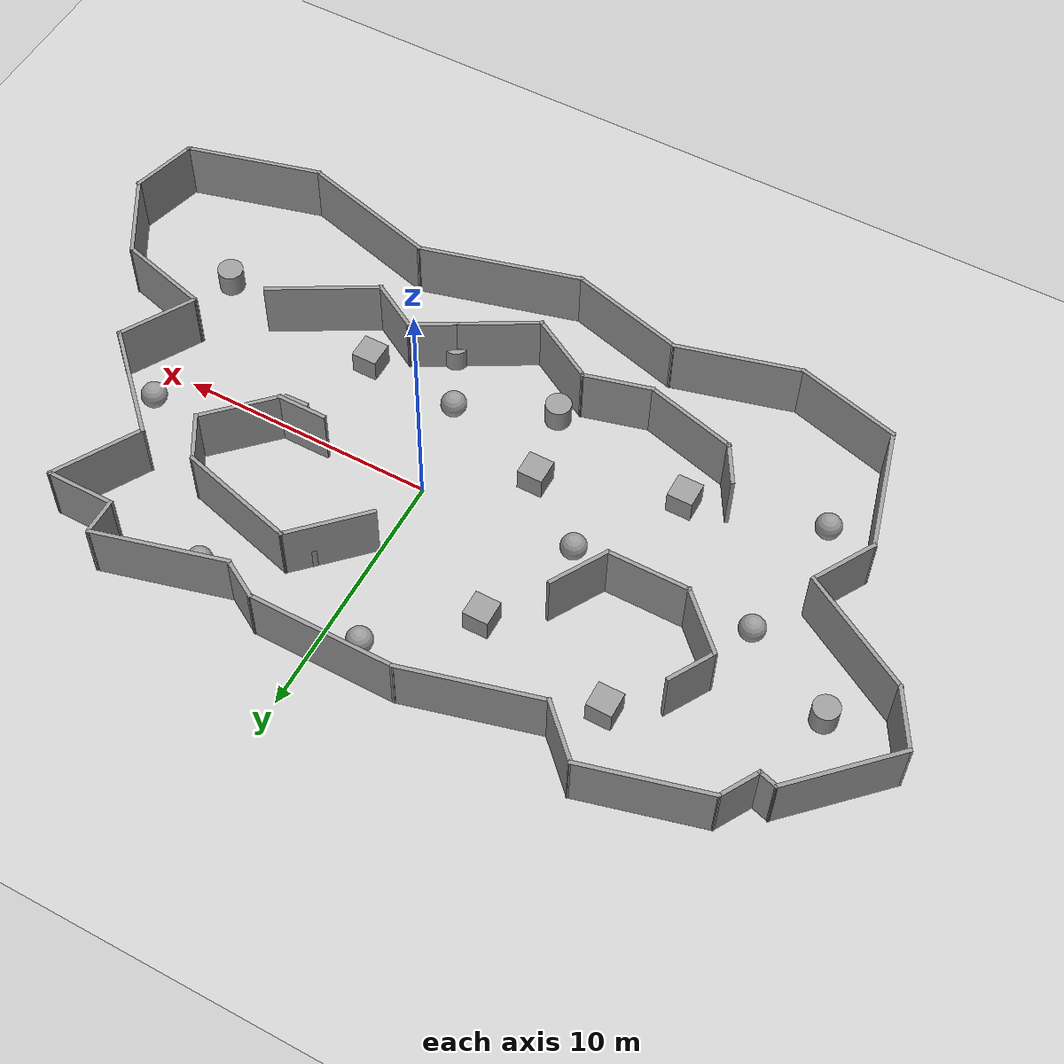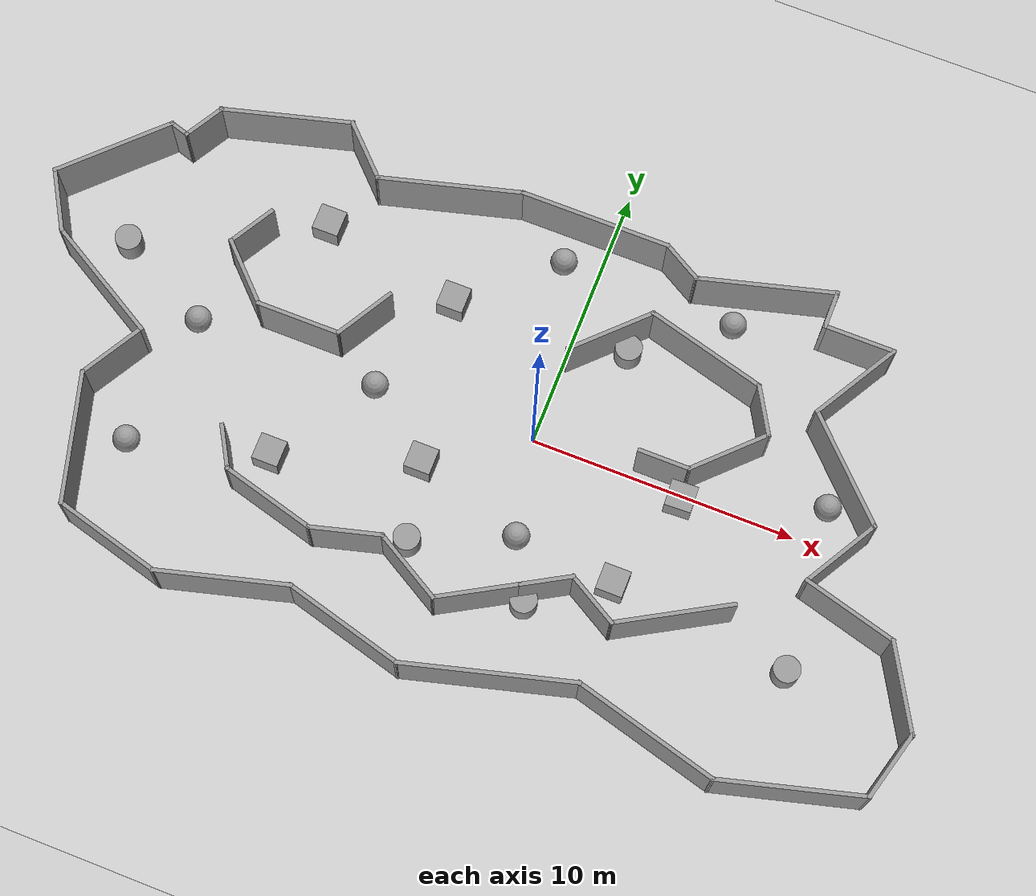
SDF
<sdf version="1.7">
 <world name="default">
  <light name="sun" type="directional">
   <pose>0 0 10 0 -0 0</pose>
   <diffuse>0.8 0.8 0.8 1</diffuse>
   <specular>0.2 0.2 0.2 1</specular>
   <attenuation>
    <range>1000</range>
    <constant>0.9</constant>
    <linear>0.01</linear>
    <quadratic>0.001</quadratic>
   </attenuation>
   <direction>-0.5 0.1 -0.9</direction>
   <spot><inner_angle>0</inner_angle><outer_angle>0</outer_angle><falloff>0</falloff></spot>
  </light>
  <model name="ground_plane">
   <static>1</static>
   <link name="link">
    <collision name="collision">
     <geometry><plane><normal>0 0 1</normal><size>100 100</size></plane></geometry>
     <surface>
      <contact><collide_bitmask>65535</collide_bitmask></contact>
      <friction><ode><mu>100</mu><mu2>50</mu2></ode></friction>
     </surface>
    </collision>
    <visual name="visual">
     <cast_shadows>0</cast_shadows>
     <geometry><plane><normal>0 0 1</normal><size>100 100</size></plane></geometry>
     <material>
      <script><uri>file://media/materials/scripts/gazebo.material</uri><name>Gazebo/Grey</name></script>
     </material>
    </visual>
   </link>
  </model>
  <physics type="ode">
   <max_step_size>0.01</max_step_size>
   <real_time_factor>1</real_time_factor>
   <real_time_update_rate>100</real_time_update_rate>
  </physics>
  <gravity>0 0 -9.8</gravity>
  <magnetic_field>6e-06 2.3e-05 -4.2e-05</magnetic_field>
  <atmosphere type="adiabatic"/>
  <scene><ambient>0.4 0.4 0.4 1</ambient><background>0.7 0.7 0.7 1</background><shadows>1</shadows></scene>
  <spherical_coordinates>
   <surface_model>EARTH_WGS84</surface_model>
   <latitude_deg>0</latitude_deg>
   <longitude_deg>0</longitude_deg>
   <elevation>0</elevation>
   <heading_deg>0</heading_deg>
  </spherical_coordinates>
  <model name="best2">
   <pose>-1.85034 -0.715268 0 0 -0 0</pose>
   <link name="Wall_1">
    <collision name="Wall_1_Collision">
     <geometry><box><size>4.75 0.15 2.5</size></box></geometry>
     <pose>0 0 1.25 0 -0 0</pose>
    </collision>
    <visual name="Wall_1_Visual">
     <pose>0 0 1.25 0 -0 0</pose>
     <geometry><box><size>4.75 0.15 2.5</size></box></geometry>
     <material>
      <script><uri>file://media/materials/scripts/gazebo.material</uri><name>Gazebo/Grey</name></script>
      <ambient>1 1 1 1</ambient>
     </material>
     <meta><layer>0</layer></meta>
    </visual>
    <pose>-16.273 4.88762 0 0 -0 -2.35619</pose>
   </link>
   <link name="Wall_10">
    <collision name="Wall_10_Collision">
     <geometry><box><size>5.75 0.15 2.5</size></box></geometry>
     <pose>0 0 1.25 0 -0 0</pose>
    </collision>
    <visual name="Wall_10_Visual">
     <pose>0 0 1.25 0 -0 0</pose>
     <geometry><box><size>5.75 0.15 2.5</size></box></geometry>
     <material>
      <script><uri>file://media/materials/scripts/gazebo.material</uri><name>Gazebo/Grey</name></script>
      <ambient>1 1 1 1</ambient>
     </material>
     <meta><layer>0</layer></meta>
    </visual>
    <pose>9.3577 -8.21294 0 0 -0 -0.261799</pose>
   </link>
   <link name="Wall_11">
    <collision name="Wall_11_Collision">
     <geometry><box><size>5.5 0.15 2.5</size></box></geometry>
     <pose>0 0 1.25 0 -0 0</pose>
    </collision>
    <visual name="Wall_11_Visual">
     <pose>0 0 1.25 0 -0 0</pose>
     <geometry><box><size>5.5 0.15 2.5</size></box></geometry>
     <material>
      <script><uri>file://media/materials/scripts/gazebo.material</uri><name>Gazebo/Grey</name></script>
      <ambient>1 1 1 1</ambient>
     </material>
     <meta><layer>0</layer></meta>
    </visual>
    <pose>14.6461 -8.24529 0 0 -0 0.261799</pose>
   </link>
   <link name="Wall_12">
    <collision name="Wall_12_Collision">
     <geometry><box><size>2.75 0.15 2.5</size></box></geometry>
     <pose>0 0 1.25 0 -0 0</pose>
    </collision>
    <visual name="Wall_12_Visual">
     <pose>0 0 1.25 0 -0 0</pose>
     <geometry><box><size>2.75 0.15 2.5</size></box></geometry>
     <material>
      <script><uri>file://media/materials/scripts/gazebo.material</uri><name>Gazebo/Grey</name></script>
      <ambient>1 1 1 1</ambient>
     </material>
     <meta><layer>0</layer></meta>
    </visual>
    <pose>17.5665 -6.29725 0 0 -0 1.309</pose>
   </link>
   <link name="Wall_13">
    <collision name="Wall_13_Collision">
     <geometry><box><size>3.5 0.15 2.5</size></box></geometry>
     <pose>0 0 1.25 0 -0 0</pose>
    </collision>
    <visual name="Wall_13_Visual">
     <pose>0 0 1.25 0 -0 0</pose>
     <geometry><box><size>3.5 0.15 2.5</size></box></geometry>
     <material>
      <script><uri>file://media/materials/scripts/gazebo.material</uri><name>Gazebo/Grey</name></script>
      <ambient>1 1 1 1</ambient>
     </material>
     <meta><layer>0</layer></meta>
    </visual>
    <pose>17.0654 -3.59095 0 0 -0 2.0944</pose>
   </link>
   <link name="Wall_14">
    <collision name="Wall_14_Collision">
     <geometry><box><size>3.75 0.15 2.5</size></box></geometry>
     <pose>0 0 1.25 0 -0 0</pose>
    </collision>
    <visual name="Wall_14_Visual">
     <pose>0 0 1.25 0 -0 0</pose>
     <geometry><box><size>3.75 0.15 2.5</size></box></geometry>
     <material>
      <script><uri>file://media/materials/scripts/gazebo.material</uri><name>Gazebo/Grey</name></script>
      <ambient>1 1 1 1</ambient>
     </material>
     <meta><layer>0</layer></meta>
    </visual>
    <pose>14.4893 -1.67448 0 0 -0 2.87979</pose>
   </link>
   <link name="Wall_15">
    <collision name="Wall_15_Collision">
     <geometry><box><size>3.25 0.15 2.5</size></box></geometry>
     <pose>0 0 1.25 0 -0 0</pose>
    </collision>
    <visual name="Wall_15_Visual">
     <pose>0 0 1.25 0 -0 0</pose>
     <geometry><box><size>3.25 0.15 2.5</size></box></geometry>
     <material>
      <script><uri>file://media/materials/scripts/gazebo.material</uri><name>Gazebo/Grey</name></script>
      <ambient>1 1 1 1</ambient>
     </material>
     <meta><layer>0</layer></meta>
    </visual>
    <pose>13.5256 0.133729 0 0 -0 1.0472</pose>
   </link>
   <link name="Wall_16">
    <collision name="Wall_16_Collision">
     <geometry><box><size>4.75 0.15 2.5</size></box></geometry>
     <pose>0 0 1.25 0 -0 0</pose>
    </collision>
    <visual name="Wall_16_Visual">
     <pose>0 0 1.25 0 -0 0</pose>
     <geometry><box><size>4.75 0.15 2.5</size></box></geometry>
     <material>
      <script><uri>file://media/materials/scripts/gazebo.material</uri><name>Gazebo/Grey</name></script>
      <ambient>1 1 1 1</ambient>
     </material>
     <meta><layer>0</layer></meta>
    </visual>
    <pose>12.6742 3.10241 0 0 -0 2.35619</pose>
   </link>
   <link name="Wall_17">
    <collision name="Wall_17_Collision">
     <geometry><box><size>3.75 0.15 2.5</size></box></geometry>
     <pose>0 0 1.25 0 -0 0</pose>
    </collision>
    <visual name="Wall_17_Visual">
     <pose>0 0 1.25 0 -0 0</pose>
     <geometry><box><size>3.75 0.15 2.5</size></box></geometry>
     <material>
      <script><uri>file://media/materials/scripts/gazebo.material</uri><name>Gazebo/Grey</name></script>
      <ambient>1 1 1 1</ambient>
     </material>
     <meta><layer>0</layer></meta>
    </visual>
    <pose>11.9479 6.28761 0 0 -0 1.0472</pose>
   </link>
   <link name="Wall_18">
    <collision name="Wall_18_Collision">
     <geometry><box><size>2.75 0.15 2.5</size></box></geometry>
     <pose>0 0 1.25 0 -0 0</pose>
    </collision>
    <visual name="Wall_18_Visual">
     <pose>0 0 1.25 0 -0 0</pose>
     <geometry><box><size>2.75 0.15 2.5</size></box></geometry>
     <material>
      <script><uri>file://media/materials/scripts/gazebo.material</uri><name>Gazebo/Grey</name></script>
      <ambient>1 1 1 1</ambient>
     </material>
     <meta><layer>0</layer></meta>
    </visual>
    <pose>11.5479 7.84645 0 0 -0 3.14159</pose>
   </link>
   <link name="Wall_19">
    <collision name="Wall_19_Collision">
     <geometry><box><size>1.5 0.15 2.5</size></box></geometry>
     <pose>0 0 1.25 0 -0 0</pose>
    </collision>
    <visual name="Wall_19_Visual">
     <pose>0 0 1.25 0 -0 0</pose>
     <geometry><box><size>1.5 0.15 2.5</size></box></geometry>
     <material>
      <script><uri>file://media/materials/scripts/gazebo.material</uri><name>Gazebo/Grey</name></script>
      <ambient>1 1 1 1</ambient>
     </material>
     <meta><layer>0</layer></meta>
    </visual>
    <pose>10.2479 8.52145 0 0 -0 1.5708</pose>
   </link>
   <link name="Wall_2">
    <collision name="Wall_2_Collision">
     <geometry><box><size>2.5 0.15 2.5</size></box></geometry>
     <pose>0 0 1.25 0 -0 0</pose>
    </collision>
    <visual name="Wall_2_Visual">
     <pose>0 0 1.25 0 -0 0</pose>
     <geometry><box><size>2.5 0.15 2.5</size></box></geometry>
     <material>
      <script><uri>file://media/materials/scripts/gazebo.material</uri><name>Gazebo/Grey</name></script>
      <ambient>1 1 1 1</ambient>
     </material>
     <meta><layer>0</layer></meta>
    </visual>
    <pose>-17.3118 2.24369 0 0 -0 -1.0472</pose>
   </link>
   <link name="Wall_20">
    <collision name="Wall_20_Collision">
     <geometry><box><size>5.25 0.15 2.5</size></box></geometry>
     <pose>0 0 1.25 0 -0 0</pose>
    </collision>
    <visual name="Wall_20_Visual">
     <pose>0 0 1.25 0 -0 0</pose>
     <geometry><box><size>5.25 0.15 2.5</size></box></geometry>
     <material>
      <script><uri>file://media/materials/scripts/gazebo.material</uri><name>Gazebo/Grey</name></script>
      <ambient>1 1 1 1</ambient>
     </material>
     <meta><layer>0</layer></meta>
    </visual>
    <pose>7.78479 8.53646 0 0 -0 -2.87979</pose>
   </link>
   <link name="Wall_21">
    <collision name="Wall_21_Collision">
     <geometry><box><size>1.75 0.15 2.5</size></box></geometry>
     <pose>0 0 1.25 0 -0 0</pose>
    </collision>
    <visual name="Wall_21_Visual">
     <pose>0 0 1.25 0 -0 0</pose>
     <geometry><box><size>1.75 0.15 2.5</size></box></geometry>
     <material>
      <script><uri>file://media/materials/scripts/gazebo.material</uri><name>Gazebo/Grey</name></script>
      <ambient>1 1 1 1</ambient>
     </material>
     <meta><layer>0</layer></meta>
    </visual>
    <pose>4.62886 8.27647 0 0 -0 2.61799</pose>
   </link>
   <link name="Wall_22">
    <collision name="Wall_22_Collision">
     <geometry><box><size>5.75 0.15 2.5</size></box></geometry>
     <pose>0 0 1.25 0 -0 0</pose>
    </collision>
    <visual name="Wall_22_Visual">
     <pose>0 0 1.25 0 -0 0</pose>
     <geometry><box><size>5.75 0.15 2.5</size></box></geometry>
     <material>
      <script><uri>file://media/materials/scripts/gazebo.material</uri><name>Gazebo/Grey</name></script>
      <ambient>1 1 1 1</ambient>
     </material>
     <meta><layer>0</layer></meta>
    </visual>
    <pose>1.13604 8.67647 0 0 -0 3.14159</pose>
   </link>
   <link name="Wall_23">
    <collision name="Wall_23_Collision">
     <geometry><box><size>5.5 0.15 2.5</size></box></geometry>
     <pose>0 0 1.25 0 -0 0</pose>
    </collision>
    <visual name="Wall_23_Visual">
     <pose>0 0 1.25 0 -0 0</pose>
     <geometry><box><size>5.5 0.15 2.5</size></box></geometry>
     <material>
      <script><uri>file://media/materials/scripts/gazebo.material</uri><name>Gazebo/Grey</name></script>
      <ambient>1 1 1 1</ambient>
     </material>
     <meta><layer>0</layer></meta>
    </visual>
    <pose>-4.24781 7.98413 0 0 -0 -2.87979</pose>
   </link>
   <link name="Wall_24">
    <collision name="Wall_24_Collision">
     <geometry><box><size>2.5 0.15 2.5</size></box></geometry>
     <pose>0 0 1.25 0 -0 0</pose>
    </collision>
    <visual name="Wall_24_Visual">
     <pose>0 0 1.25 0 -0 0</pose>
     <geometry><box><size>2.5 0.15 2.5</size></box></geometry>
     <material>
      <script><uri>file://media/materials/scripts/gazebo.material</uri><name>Gazebo/Grey</name></script>
      <ambient>1 1 1 1</ambient>
     </material>
     <meta><layer>0</layer></meta>
    </visual>
    <pose>-7.66251 8.12264 0 0 -0 2.35619</pose>
   </link>
   <link name="Wall_25">
    <collision name="Wall_25_Collision">
     <geometry><box><size>5 0.15 2.5</size></box></geometry>
     <pose>0 0 1.25 0 -0 0</pose>
    </collision>
    <visual name="Wall_25_Visual">
     <pose>0 0 1.25 0 -0 0</pose>
     <geometry><box><size>5 0.15 2.5</size></box></geometry>
     <material>
      <script><uri>file://media/materials/scripts/gazebo.material</uri><name>Gazebo/Grey</name></script>
      <ambient>1 1 1 1</ambient>
     </material>
     <meta><layer>0</layer></meta>
    </visual>
    <pose>-10.8357 8.32586 0 0 -0 -2.87979</pose>
   </link>
   <link name="Wall_26">
    <collision name="Wall_26_Collision">
     <geometry><box><size>1.75 0.15 2.5</size></box></geometry>
     <pose>0 0 1.25 0 -0 0</pose>
    </collision>
    <visual name="Wall_26_Visual">
     <pose>0 0 1.25 0 -0 0</pose>
     <geometry><box><size>1.75 0.15 2.5</size></box></geometry>
     <material>
      <script><uri>file://media/materials/scripts/gazebo.material</uri><name>Gazebo/Grey</name></script>
      <ambient>1 1 1 1</ambient>
     </material>
     <meta><layer>0</layer></meta>
    </visual>
    <pose>-13.5781 7.0054 0 0 -0 -2.0944</pose>
   </link>
   <link name="Wall_27">
    <collision name="Wall_27_Collision">
     <geometry><box><size>0.848188 0.15 2.5</size></box></geometry>
     <pose>0 0 1.25 0 -0 0</pose>
    </collision>
    <visual name="Wall_27_Visual">
     <pose>0 0 1.25 0 -0 0</pose>
     <geometry><box><size>0.848188 0.15 2.5</size></box></geometry>
     <material>
      <script><uri>file://media/materials/scripts/gazebo.material</uri><name>Gazebo/Grey</name></script>
      <ambient>1 1 1 1</ambient>
     </material>
     <meta><layer>0</layer></meta>
    </visual>
    <pose>-14.3124 6.41327 0 0 -0 2.849</pose>
   </link>
   <link name="Wall_29">
    <collision name="Wall_29_Collision">
     <geometry><box><size>2 0.15 2.5</size></box></geometry>
     <pose>0 0 1.25 0 -0 0</pose>
    </collision>
    <visual name="Wall_29_Visual">
     <pose>0 0 1.25 0 -0 0</pose>
     <geometry><box><size>2 0.15 2.5</size></box></geometry>
     <material>
      <script><uri>file://media/materials/scripts/gazebo.material</uri><name>Gazebo/Grey</name></script>
      <ambient>1 1 1 1</ambient>
     </material>
     <meta><layer>0</layer></meta>
    </visual>
    <pose>-10.3743 3.87376 0 0 -0 -2.0944</pose>
   </link>
   <link name="Wall_3">
    <collision name="Wall_3_Collision">
     <geometry><box><size>5 0.15 2.5</size></box></geometry>
     <pose>0 0 1.25 0 -0 0</pose>
    </collision>
    <visual name="Wall_3_Visual">
     <pose>0 0 1.25 0 -0 0</pose>
     <geometry><box><size>5 0.15 2.5</size></box></geometry>
     <material>
      <script><uri>file://media/materials/scripts/gazebo.material</uri><name>Gazebo/Grey</name></script>
      <ambient>1 1 1 1</ambient>
     </material>
     <meta><layer>0</layer></meta>
    </visual>
    <pose>-14.6242 0.013612 0 0 -0 -0.523599</pose>
   </link>
   <link name="Wall_30">
    <collision name="Wall_30_Collision">
     <geometry><box><size>2.75 0.15 2.5</size></box></geometry>
     <pose>0 0 1.25 0 -0 0</pose>
    </collision>
    <visual name="Wall_30_Visual">
     <pose>0 0 1.25 0 -0 0</pose>
     <geometry><box><size>2.75 0.15 2.5</size></box></geometry>
     <material>
      <script><uri>file://media/materials/scripts/gazebo.material</uri><name>Gazebo/Grey</name></script>
      <ambient>1 1 1 1</ambient>
     </material>
     <meta><layer>0</layer></meta>
    </visual>
    <pose>-9.9176 2.15345 0 0 -0 -0.785398</pose>
   </link>
   <link name="Wall_31">
    <collision name="Wall_31_Collision">
     <geometry><box><size>3.25 0.15 2.5</size></box></geometry>
     <pose>0 0 1.25 0 -0 0</pose>
    </collision>
    <visual name="Wall_31_Visual">
     <pose>0 0 1.25 0 -0 0</pose>
     <geometry><box><size>3.25 0.15 2.5</size></box></geometry>
     <material>
      <script><uri>file://media/materials/scripts/gazebo.material</uri><name>Gazebo/Grey</name></script>
      <ambient>1 1 1 1</ambient>
     </material>
     <meta><layer>0</layer></meta>
    </visual>
    <pose>-7.44836 1.23421 0 0 -0 0</pose>
   </link>
   <link name="Wall_32">
    <collision name="Wall_32_Collision">
     <geometry><box><size>2.5 0.15 2.5</size></box></geometry>
     <pose>0 0 1.25 0 -0 0</pose>
    </collision>
    <visual name="Wall_32_Visual">
     <pose>0 0 1.25 0 -0 0</pose>
     <geometry><box><size>2.5 0.15 2.5</size></box></geometry>
     <material>
      <script><uri>file://media/materials/scripts/gazebo.material</uri><name>Gazebo/Grey</name></script>
      <ambient>1 1 1 1</ambient>
     </material>
     <meta><layer>0</layer></meta>
    </visual>
    <pose>-5.31086 2.25179 0 0 -0 1.0472</pose>
   </link>
   <link name="Wall_34">
    <collision name="Wall_34_Collision">
     <geometry><box><size>3.5 0.15 2.5</size></box></geometry>
     <pose>0 0 1.25 0 -0 0</pose>
    </collision>
    <visual name="Wall_34_Visual">
     <pose>0 0 1.25 0 -0 0</pose>
     <geometry><box><size>3.5 0.15 2.5</size></box></geometry>
     <material>
      <script><uri>file://media/materials/scripts/gazebo.material</uri><name>Gazebo/Grey</name></script>
      <ambient>1 1 1 1</ambient>
     </material>
     <meta><layer>0</layer></meta>
    </visual>
    <pose>3.16822 4.88098 0 0 -0 0.785398</pose>
   </link>
   <link name="Wall_35">
    <collision name="Wall_35_Collision">
     <geometry><box><size>4.75 0.15 2.5</size></box></geometry>
     <pose>0 0 1.25 0 -0 0</pose>
    </collision>
    <visual name="Wall_35_Visual">
     <pose>0 0 1.25 0 -0 0</pose>
     <geometry><box><size>4.75 0.15 2.5</size></box></geometry>
     <material>
      <script><uri>file://media/materials/scripts/gazebo.material</uri><name>Gazebo/Grey</name></script>
      <ambient>1 1 1 1</ambient>
     </material>
     <meta><layer>0</layer></meta>
    </visual>
    <pose>6.57425 5.4701 0 0 -0 -0.261799</pose>
   </link>
   <link name="Wall_36">
    <collision name="Wall_36_Collision">
     <geometry><box><size>2 0.15 2.5</size></box></geometry>
     <pose>0 0 1.25 0 -0 0</pose>
    </collision>
    <visual name="Wall_36_Visual">
     <pose>0 0 1.25 0 -0 0</pose>
     <geometry><box><size>2 0.15 2.5</size></box></geometry>
     <material>
      <script><uri>file://media/materials/scripts/gazebo.material</uri><name>Gazebo/Grey</name></script>
      <ambient>1 1 1 1</ambient>
     </material>
     <meta><layer>0</layer></meta>
    </visual>
    <pose>9.25838 4.07374 0 0 -0 -1.0472</pose>
   </link>
   <link name="Wall_37">
    <collision name="Wall_37_Collision">
     <geometry><box><size>3.25 0.15 2.5</size></box></geometry>
     <pose>0 0 1.25 0 -0 0</pose>
    </collision>
    <visual name="Wall_37_Visual">
     <pose>0 0 1.25 0 -0 0</pose>
     <geometry><box><size>3.25 0.15 2.5</size></box></geometry>
     <material>
      <script><uri>file://media/materials/scripts/gazebo.material</uri><name>Gazebo/Grey</name></script>
      <ambient>1 1 1 1</ambient>
     </material>
     <meta><layer>0</layer></meta>
    </visual>
    <pose>8.62487 2.17665 0 0 -0 -2.35619</pose>
   </link>
   <link name="Wall_38">
    <collision name="Wall_38_Collision">
     <geometry><box><size>2 0.15 2.5</size></box></geometry>
     <pose>0 0 1.25 0 -0 0</pose>
    </collision>
    <visual name="Wall_38_Visual">
     <pose>0 0 1.25 0 -0 0</pose>
     <geometry><box><size>2 0.15 2.5</size></box></geometry>
     <material>
      <script><uri>file://media/materials/scripts/gazebo.material</uri><name>Gazebo/Grey</name></script>
      <ambient>1 1 1 1</ambient>
     </material>
     <meta><layer>0</layer></meta>
    </visual>
    <pose>6.60385 1.08063 0 0 -0 3.14159</pose>
   </link>
   <link name="Wall_4">
    <collision name="Wall_4_Collision">
     <geometry><box><size>2.75 0.15 2.5</size></box></geometry>
     <pose>0 0 1.25 0 -0 0</pose>
    </collision>
    <visual name="Wall_4_Visual">
     <pose>0 0 1.25 0 -0 0</pose>
     <geometry><box><size>2.75 0.15 2.5</size></box></geometry>
     <material>
      <script><uri>file://media/materials/scripts/gazebo.material</uri><name>Gazebo/Grey</name></script>
      <ambient>1 1 1 1</ambient>
     </material>
     <meta><layer>0</layer></meta>
    </visual>
    <pose>-13.1741 -2.32472 0 0 -0 -2.0944</pose>
   </link>
   <link name="Wall_40">
    <collision name="Wall_40_Collision">
     <geometry><box><size>1.75 0.15 2.5</size></box></geometry>
     <pose>0 0 1.25 0 -0 0</pose>
    </collision>
    <visual name="Wall_40_Visual">
     <pose>0 0 1.25 0 -0 0</pose>
     <geometry><box><size>1.75 0.15 2.5</size></box></geometry>
     <material>
      <script><uri>file://media/materials/scripts/gazebo.material</uri><name>Gazebo/Grey</name></script>
      <ambient>1 1 1 1</ambient>
     </material>
     <meta><layer>0</layer></meta>
    </visual>
    <pose>-8.02488 -4.15712 0 0 -0 -1.0472</pose>
   </link>
   <link name="Wall_41">
    <collision name="Wall_41_Collision">
     <geometry><box><size>3.75 0.15 2.5</size></box></geometry>
     <pose>0 0 1.25 0 -0 0</pose>
    </collision>
    <visual name="Wall_41_Visual">
     <pose>0 0 1.25 0 -0 0</pose>
     <geometry><box><size>3.75 0.15 2.5</size></box></geometry>
     <material>
      <script><uri>file://media/materials/scripts/gazebo.material</uri><name>Gazebo/Grey</name></script>
      <ambient>1 1 1 1</ambient>
     </material>
     <meta><layer>0</layer></meta>
    </visual>
    <pose>-5.88621 -5.31581 0 0 -0 -0.261799</pose>
   </link>
   <link name="Wall_42">
    <collision name="Wall_42_Collision">
     <geometry><box><size>2.75 0.15 2.5</size></box></geometry>
     <pose>0 0 1.25 0 -0 0</pose>
    </collision>
    <visual name="Wall_42_Visual">
     <pose>0 0 1.25 0 -0 0</pose>
     <geometry><box><size>2.75 0.15 2.5</size></box></geometry>
     <material>
      <script><uri>file://media/materials/scripts/gazebo.material</uri><name>Gazebo/Grey</name></script>
      <ambient>1 1 1 1</ambient>
     </material>
     <meta><layer>0</layer></meta>
    </visual>
    <pose>-2.89184 -5.44522 0 0 -0 0.261799</pose>
   </link>
   <link name="Wall_43">
    <collision name="Wall_43_Collision">
     <geometry><box><size>3 0.15 2.5</size></box></geometry>
     <pose>0 0 1.25 0 -0 0</pose>
    </collision>
    <visual name="Wall_43_Visual">
     <pose>0 0 1.25 0 -0 0</pose>
     <geometry><box><size>3 0.15 2.5</size></box></geometry>
     <material>
      <script><uri>file://media/materials/scripts/gazebo.material</uri><name>Gazebo/Grey</name></script>
      <ambient>1 1 1 1</ambient>
     </material>
     <meta><layer>0</layer></meta>
    </visual>
    <pose>-0.402054 -5.82126 0 0 -0 -0.523599</pose>
   </link>
   <link name="Wall_44">
    <collision name="Wall_44_Collision">
     <geometry><box><size>3.25 0.15 2.5</size></box></geometry>
     <pose>0 0 1.25 0 -0 0</pose>
    </collision>
    <visual name="Wall_44_Visual">
     <pose>0 0 1.25 0 -0 0</pose>
     <geometry><box><size>3.25 0.15 2.5</size></box></geometry>
     <material>
      <script><uri>file://media/materials/scripts/gazebo.material</uri><name>Gazebo/Grey</name></script>
      <ambient>1 1 1 1</ambient>
     </material>
     <meta><layer>0</layer></meta>
    </visual>
    <pose>2.17437 -5.75876 0 0 -0 0.523599</pose>
   </link>
   <link name="Wall_45">
    <collision name="Wall_45_Collision">
     <geometry><box><size>2 0.15 2.5</size></box></geometry>
     <pose>0 0 1.25 0 -0 0</pose>
    </collision>
    <visual name="Wall_45_Visual">
     <pose>0 0 1.25 0 -0 0</pose>
     <geometry><box><size>2 0.15 2.5</size></box></geometry>
     <material>
      <script><uri>file://media/materials/scripts/gazebo.material</uri><name>Gazebo/Grey</name></script>
      <ambient>1 1 1 1</ambient>
     </material>
     <meta><layer>0</layer></meta>
    </visual>
    <pose>4.31778 -4.52126 0 0 -0 0.523599</pose>
   </link>
   <link name="Wall_46">
    <collision name="Wall_46_Collision">
     <geometry><box><size>2.25 0.15 2.5</size></box></geometry>
     <pose>0 0 1.25 0 -0 0</pose>
    </collision>
    <visual name="Wall_46_Visual">
     <pose>0 0 1.25 0 -0 0</pose>
     <geometry><box><size>2.25 0.15 2.5</size></box></geometry>
     <material>
      <script><uri>file://media/materials/scripts/gazebo.material</uri><name>Gazebo/Grey</name></script>
      <ambient>1 1 1 1</ambient>
     </material>
     <meta><layer>0</layer></meta>
    </visual>
    <pose>6.02818 -4.58376 0 0 -0 -0.523599</pose>
   </link>
   <link name="Wall_47">
    <collision name="Wall_47_Collision">
     <geometry><box><size>4.5 0.15 2.5</size></box></geometry>
     <pose>0 0 1.25 0 -0 0</pose>
    </collision>
    <visual name="Wall_47_Visual">
     <pose>0 0 1.25 0 -0 0</pose>
     <geometry><box><size>4.5 0.15 2.5</size></box></geometry>
     <material>
      <script><uri>file://media/materials/scripts/gazebo.material</uri><name>Gazebo/Grey</name></script>
      <ambient>1 1 1 1</ambient>
     </material>
     <meta><layer>0</layer></meta>
    </visual>
    <pose>8.82112 -4.02126 0 0 -0 0.523599</pose>
   </link>
   <link name="Wall_5">
    <collision name="Wall_5_Collision">
     <geometry><box><size>5 0.15 2.5</size></box></geometry>
     <pose>0 0 1.25 0 -0 0</pose>
    </collision>
    <visual name="Wall_5_Visual">
     <pose>0 0 1.25 0 -0 0</pose>
     <geometry><box><size>5 0.15 2.5</size></box></geometry>
     <material>
      <script><uri>file://media/materials/scripts/gazebo.material</uri><name>Gazebo/Grey</name></script>
      <ambient>1 1 1 1</ambient>
     </material>
     <meta><layer>0</layer></meta>
    </visual>
    <pose>-13.1965 -5.79292 0 0 -0 -1.309</pose>
   </link>
   <link name="Wall_6">
    <collision name="Wall_6_Collision">
     <geometry><box><size>4.25 0.15 2.5</size></box></geometry>
     <pose>0 0 1.25 0 -0 0</pose>
    </collision>
    <visual name="Wall_6_Visual">
     <pose>0 0 1.25 0 -0 0</pose>
     <geometry><box><size>4.25 0.15 2.5</size></box></geometry>
     <material>
      <script><uri>file://media/materials/scripts/gazebo.material</uri><name>Gazebo/Grey</name></script>
      <ambient>1 1 1 1</ambient>
     </material>
     <meta><layer>0</layer></meta>
    </visual>
    <pose>-10.5887 -8.66587 0 0 -0 -0.261799</pose>
   </link>
   <link name="Wall_7">
    <collision name="Wall_7_Collision">
     <geometry><box><size>5 0.15 2.5</size></box></geometry>
     <pose>0 0 1.25 0 -0 0</pose>
    </collision>
    <visual name="Wall_7_Visual">
     <pose>0 0 1.25 0 -0 0</pose>
     <geometry><box><size>5 0.15 2.5</size></box></geometry>
     <material>
      <script><uri>file://media/materials/scripts/gazebo.material</uri><name>Gazebo/Grey</name></script>
      <ambient>1 1 1 1</ambient>
     </material>
     <meta><layer>0</layer></meta>
    </visual>
    <pose>-6.26615 -8.56882 0 0 -0 0.261799</pose>
   </link>
   <link name="Wall_8">
    <collision name="Wall_8_Collision">
     <geometry><box><size>4.75 0.15 2.5</size></box></geometry>
     <pose>0 0 1.25 0 -0 0</pose>
    </collision>
    <visual name="Wall_8_Visual">
     <pose>0 0 1.25 0 -0 0</pose>
     <geometry><box><size>4.75 0.15 2.5</size></box></geometry>
     <material>
      <script><uri>file://media/materials/scripts/gazebo.material</uri><name>Gazebo/Grey</name></script>
      <ambient>1 1 1 1</ambient>
     </material>
     <meta><layer>0</layer></meta>
    </visual>
    <pose>-1.70215 -8.53646 0 0 -0 -0.261799</pose>
   </link>
   <link name="Wall_9">
    <collision name="Wall_9_Collision">
     <geometry><box><size>6.5 0.15 2.5</size></box></geometry>
     <pose>0 0 1.25 0 -0 0</pose>
    </collision>
    <visual name="Wall_9_Visual">
     <pose>0 0 1.25 0 -0 0</pose>
     <geometry><box><size>6.5 0.15 2.5</size></box></geometry>
     <material>
      <script><uri>file://media/materials/scripts/gazebo.material</uri><name>Gazebo/Grey</name></script>
      <ambient>1 1 1 1</ambient>
     </material>
     <meta><layer>0</layer></meta>
    </visual>
    <pose>3.58629 -8.31 0 0 -0 0.261799</pose>
   </link>
   <static>1</static>
  </model>
  <model name="unit_sphere">
   <pose>-13.699 -5.42507 0.5 0 -0 0</pose>
   <link name="link">
    <inertial>
     <mass>1</mass>
     <inertia><ixx>0.1</ixx><ixy>0</ixy><ixz>0</ixz><iyy>0.1</iyy><iyz>0</iyz><izz>0.1</izz></inertia>
    </inertial>
    <collision name="collision"><geometry><sphere><radius>0.5</radius></sphere></geometry></collision>
    <visual name="visual">
     <geometry><sphere><radius>0.5</radius></sphere></geometry>
     <material>
      <script><name>Gazebo/Grey</name><uri>file://media/materials/scripts/gazebo.material</uri></script>
     </material>
    </visual>
   </link>
  </model>
  <model name="unit_cylinder">
   <pose>-16.6212 1.58641 0.49912 0 0 -1.1e-05</pose>
   <link name="link">
    <inertial>
     <mass>1</mass>
     <inertia><ixx>0.145833</ixx><ixy>0</ixy><ixz>0</ixz><iyy>0.145833</iyy><iyz>0</iyz><izz>0.125</izz></inertia>
    </inertial>
    <collision name="collision">
     <geometry><cylinder><radius>0.5</radius><length>1</length></cylinder></geometry>
    </collision>
    <visual name="visual">
     <geometry><cylinder><radius>0.5</radius><length>1</length></cylinder></geometry>
     <material>
      <script><name>Gazebo/Grey</name><uri>file://media/materials/scripts/gazebo.material</uri></script>
     </material>
    </visual>
   </link>
  </model>
  <model name="unit_box">
   <pose>-9.97521 4.91802 0.49907 0.0001 -0 0</pose>
   <link name="link">
    <inertial>
     <mass>1</mass>
     <inertia>
      <ixx>0.166667</ixx>
      <ixy>0</ixy>
      <ixz>0</ixz>
      <iyy>0.166667</iyy>
      <iyz>0</iyz>
      <izz>0.166667</izz>
     </inertia>
    </inertial>
    <collision name="collision"><geometry><box><size>1 1 1</size></box></geometry></collision>
    <visual name="visual">
     <geometry><box><size>1 1 1</size></box></geometry>
     <material>
      <script><name>Gazebo/Grey</name><uri>file://media/materials/scripts/gazebo.material</uri></script>
     </material>
    </visual>
   </link>
  </model>
  <model name="unit_sphere_0">
   <pose>-1.389 6.71834 0.5 0 -0 0</pose>
   <link name="link">
    <inertial>
     <mass>1</mass>
     <inertia><ixx>0.1</ixx><ixy>0</ixy><ixz>0</ixz><iyy>0.1</iyy><iyz>0</iyz><izz>0.1</izz></inertia>
    </inertial>
    <collision name="collision"><geometry><sphere><radius>0.5</radius></sphere></geometry></collision>
    <visual name="visual">
     <geometry><sphere><radius>0.5</radius></sphere></geometry>
     <material>
      <script><name>Gazebo/Grey</name><uri>file://media/materials/scripts/gazebo.material</uri></script>
     </material>
    </visual>
   </link>
  </model>
  <model name="unit_box_0">
   <pose>-8.62919 -4.0405 0.49967 -0.00066 0 0</pose>
   <link name="link">
    <inertial>
     <mass>1</mass>
     <inertia>
      <ixx>0.166667</ixx>
      <ixy>0</ixy>
      <ixz>0</ixz>
      <iyy>0.166667</iyy>
      <iyz>0</iyz>
      <izz>0.166667</izz>
     </inertia>
    </inertial>
    <collision name="collision"><geometry><box><size>1 1 1</size></box></geometry></collision>
    <visual name="visual">
     <geometry><box><size>1 1 1</size></box></geometry>
     <material>
      <script><name>Gazebo/Grey</name><uri>file://media/materials/scripts/gazebo.material</uri></script>
     </material>
    </visual>
   </link>
  </model>
  <model name="unit_cylinder_0">
   <pose>-2.83993 -5.22837 0.499096 4.8e-05 4.8e-05 -8e-06</pose>
   <link name="link">
    <inertial>
     <mass>1</mass>
     <inertia><ixx>0.145833</ixx><ixy>0</ixy><ixz>0</ixz><iyy>0.145833</iyy><iyz>0</iyz><izz>0.125</izz></inertia>
    </inertial>
    <collision name="collision">
     <geometry><cylinder><radius>0.5</radius><length>1</length></cylinder></geometry>
    </collision>
    <visual name="visual">
     <geometry><cylinder><radius>0.5</radius><length>1</length></cylinder></geometry>
     <material>
      <script><name>Gazebo/Grey</name><uri>file://media/materials/scripts/gazebo.material</uri></script>
     </material>
    </visual>
   </link>
  </model>
  <model name="unit_sphere_1">
   <pose>0.742931 -3.65774 0.5 0 -0 0</pose>
   <link name="link">
    <inertial>
     <mass>1</mass>
     <inertia><ixx>0.1</ixx><ixy>0</ixy><ixz>0</ixz><iyy>0.1</iyy><iyz>0</iyz><izz>0.1</izz></inertia>
    </inertial>
    <collision name="collision"><geometry><sphere><radius>0.5</radius></sphere></geometry></collision>
    <visual name="visual">
     <geometry><sphere><radius>0.5</radius></sphere></geometry>
     <material>
      <script><name>Gazebo/Grey</name><uri>file://media/materials/scripts/gazebo.material</uri></script>
     </material>
    </visual>
   </link>
  </model>
  <model name="unit_box_1">
   <pose>4.56267 -4.01952 0.49967 -0.00066 0 0</pose>
   <link name="link">
    <inertial>
     <mass>1</mass>
     <inertia>
      <ixx>0.166667</ixx>
      <ixy>0</ixy>
      <ixz>0</ixz>
      <iyy>0.166667</iyy>
      <iyz>0</iyz>
      <izz>0.166667</izz>
     </inertia>
    </inertial>
    <collision name="collision"><geometry><box><size>1 1 1</size></box></geometry></collision>
    <visual name="visual">
     <geometry><box><size>1 1 1</size></box></geometry>
     <material>
      <script><name>Gazebo/Grey</name><uri>file://media/materials/scripts/gazebo.material</uri></script>
     </material>
    </visual>
   </link>
  </model>
  <model name="unit_cylinder_1">
   <pose>1.86239 -5.84082 0.49912 0 0 -7e-06</pose>
   <link name="link">
    <inertial>
     <mass>1</mass>
     <inertia><ixx>0.145833</ixx><ixy>0</ixy><ixz>0</ixz><iyy>0.145833</iyy><iyz>0</iyz><izz>0.125</izz></inertia>
    </inertial>
    <collision name="collision">
     <geometry><cylinder><radius>0.5</radius><length>1</length></cylinder></geometry>
    </collision>
    <visual name="visual">
     <geometry><cylinder><radius>0.5</radius><length>1</length></cylinder></geometry>
     <material>
      <script><name>Gazebo/Grey</name><uri>file://media/materials/scripts/gazebo.material</uri></script>
     </material>
    </visual>
   </link>
  </model>
  <model name="unit_box_2">
   <pose>5.74135 -0.238362 0.49912 0 -0 0.045849</pose>
   <link name="link">
    <inertial>
     <mass>1</mass>
     <inertia>
      <ixx>0.166667</ixx>
      <ixy>0</ixy>
      <ixz>0</ixz>
      <iyy>0.166667</iyy>
      <iyz>0</iyz>
      <izz>0.166667</izz>
     </inertia>
    </inertial>
    <collision name="collision"><geometry><box><size>1 1 1</size></box></geometry></collision>
    <visual name="visual">
     <geometry><box><size>1 1 1</size></box></geometry>
     <material>
      <script><name>Gazebo/Grey</name><uri>file://media/materials/scripts/gazebo.material</uri></script>
     </material>
    </visual>
   </link>
  </model>
  <model name="unit_sphere_2">
   <pose>5.26324 6.66484 0.5 0 -0 0</pose>
   <link name="link">
    <inertial>
     <mass>1</mass>
     <inertia><ixx>0.1</ixx><ixy>0</ixy><ixz>0</ixz><iyy>0.1</iyy><iyz>0</iyz><izz>0.1</izz></inertia>
    </inertial>
    <collision name="collision"><geometry><sphere><radius>0.5</radius></sphere></geometry></collision>
    <visual name="visual">
     <geometry><sphere><radius>0.5</radius></sphere></geometry>
     <material>
      <script><name>Gazebo/Grey</name><uri>file://media/materials/scripts/gazebo.material</uri></script>
     </material>
    </visual>
   </link>
  </model>
  <model name="unit_cylinder_2">
   <pose>2.0378 4.30258 0.499096 4.8e-05 4.8e-05 -5e-06</pose>
   <link name="link">
    <inertial>
     <mass>1</mass>
     <inertia><ixx>0.145833</ixx><ixy>0</ixy><ixz>0</ixz><iyy>0.145833</iyy><iyz>0</iyz><izz>0.125</izz></inertia>
    </inertial>
    <collision name="collision">
     <geometry><cylinder><radius>0.5</radius><length>1</length></cylinder></geometry>
    </collision>
    <visual name="visual">
     <geometry><cylinder><radius>0.5</radius><length>1</length></cylinder></geometry>
     <material>
      <script><name>Gazebo/Grey</name><uri>file://media/materials/scripts/gazebo.material</uri></script>
     </material>
    </visual>
   </link>
  </model>
  <model name="unit_box_3">
   <pose>-4.60466 3.81197 0.49967 0.00066 -0 0</pose>
   <link name="link">
    <inertial>
     <mass>1</mass>
     <inertia>
      <ixx>0.166667</ixx>
      <ixy>0</ixy>
      <ixz>0</ixz>
      <iyy>0.166667</iyy>
      <iyz>0</iyz>
      <izz>0.166667</izz>
     </inertia>
    </inertial>
    <collision name="collision"><geometry><box><size>1 1 1</size></box></geometry></collision>
    <visual name="visual">
     <geometry><box><size>1 1 1</size></box></geometry>
     <material>
      <script><name>Gazebo/Grey</name><uri>file://media/materials/scripts/gazebo.material</uri></script>
     </material>
    </visual>
   </link>
  </model>
  <model name="unit_sphere_3">
   <pose>-6.09096 -0.248899 0.5 0 -0 0</pose>
   <link name="link">
    <inertial>
     <mass>1</mass>
     <inertia><ixx>0.1</ixx><ixy>0</ixy><ixz>0</ixz><iyy>0.1</iyy><iyz>0</iyz><izz>0.1</izz></inertia>
    </inertial>
    <collision name="collision"><geometry><sphere><radius>0.5</radius></sphere></geometry></collision>
    <visual name="visual">
     <geometry><sphere><radius>0.5</radius></sphere></geometry>
     <material>
      <script><name>Gazebo/Grey</name><uri>file://media/materials/scripts/gazebo.material</uri></script>
     </material>
    </visual>
   </link>
  </model>
  <model name="unit_cylinder_3">
   <pose>11.3566 -4.79441 0.49912 0 0 -4e-06</pose>
   <link name="link">
    <inertial>
     <mass>1</mass>
     <inertia><ixx>0.145833</ixx><ixy>0</ixy><ixz>0</ixz><iyy>0.145833</iyy><iyz>0</iyz><izz>0.125</izz></inertia>
    </inertial>
    <collision name="collision">
     <geometry><cylinder><radius>0.5</radius><length>1</length></cylinder></geometry>
    </collision>
    <visual name="visual">
     <geometry><cylinder><radius>0.5</radius><length>1</length></cylinder></geometry>
     <material>
      <script><name>Gazebo/Grey</name><uri>file://media/materials/scripts/gazebo.material</uri></script>
     </material>
    </visual>
   </link>
  </model>
  <model name="unit_sphere_4">
   <pose>10.7745 1.39779 0.5 0 -0 0</pose>
   <link name="link">
    <inertial>
     <mass>1</mass>
     <inertia><ixx>0.1</ixx><ixy>0</ixy><ixz>0</ixz><iyy>0.1</iyy><iyz>0</iyz><izz>0.1</izz></inertia>
    </inertial>
    <collision name="collision"><geometry><sphere><radius>0.5</radius></sphere></geometry></collision>
    <visual name="visual">
     <geometry><sphere><radius>0.5</radius></sphere></geometry>
     <material>
      <script><name>Gazebo/Grey</name><uri>file://media/materials/scripts/gazebo.material</uri></script>
     </material>
    </visual>
   </link>
  </model>
  <model name="unit_sphere_5">
   <pose>-13.0701 -0.274477 0.5 0 -0 0</pose>
   <link name="link">
    <inertial>
     <mass>1</mass>
     <inertia><ixx>0.1</ixx><ixy>0</ixy><ixz>0</ixz><iyy>0.1</iyy><iyz>0</iyz><izz>0.1</izz></inertia>
    </inertial>
    <collision name="collision"><geometry><sphere><radius>0.5</radius></sphere></geometry></collision>
    <visual name="visual">
     <geometry><sphere><radius>0.5</radius></sphere></geometry>
     <material>
      <script><name>Gazebo/Grey</name><uri>file://media/materials/scripts/gazebo.material</uri></script>
     </material>
    </visual>
   </link>
  </model>
  <model name="unit_box_4">
   <pose>-3.43913 -2.31822 0.499798 0.000404 1e-06 0</pose>
   <link name="link">
    <inertial>
     <mass>1</mass>
     <inertia>
      <ixx>0.166667</ixx>
      <ixy>0</ixy>
      <ixz>0</ixz>
      <iyy>0.166667</iyy>
      <iyz>0</iyz>
      <izz>0.166667</izz>
     </inertia>
    </inertial>
    <collision name="collision"><geometry><box><size>1 1 1</size></box></geometry></collision>
    <visual name="visual">
     <geometry><box><size>1 1 1</size></box></geometry>
     <material>
      <script><name>Gazebo/Grey</name><uri>file://media/materials/scripts/gazebo.material</uri></script>
     </material>
    </visual>
   </link>
  </model>
 </world>
</sdf>
